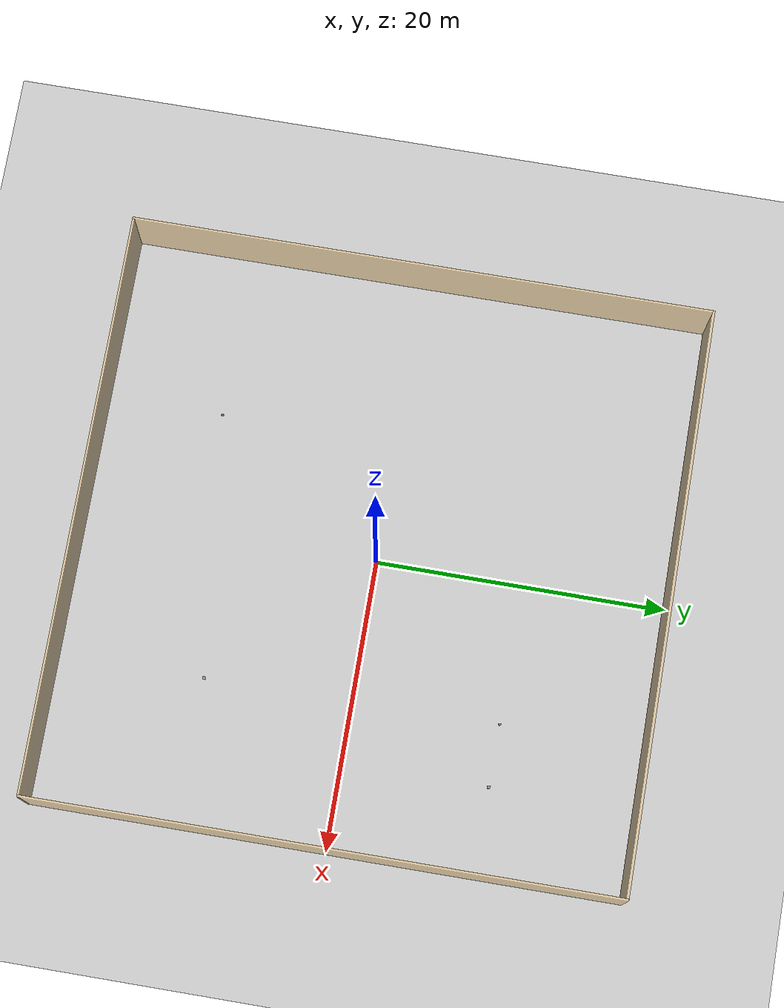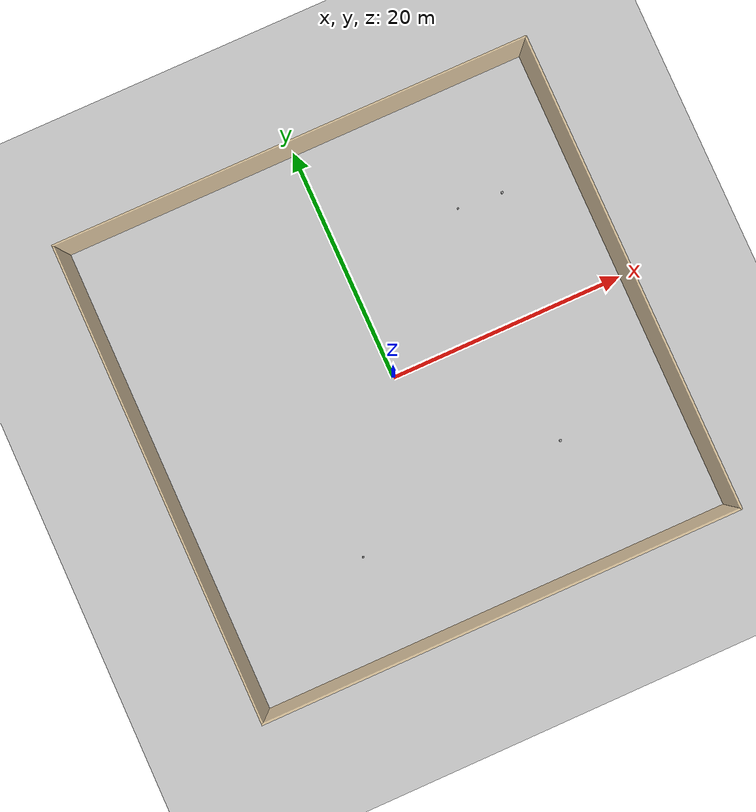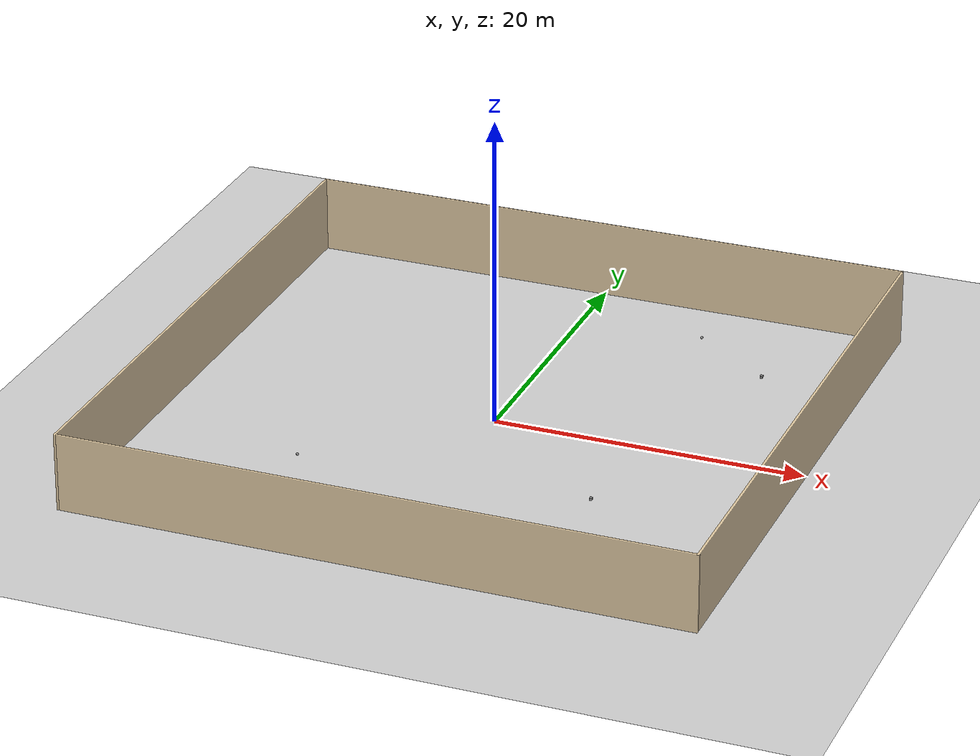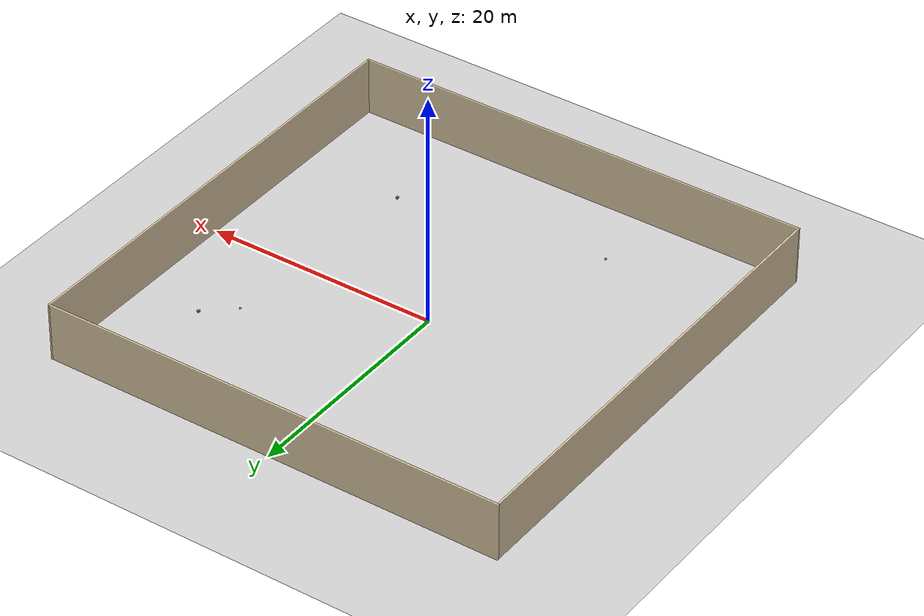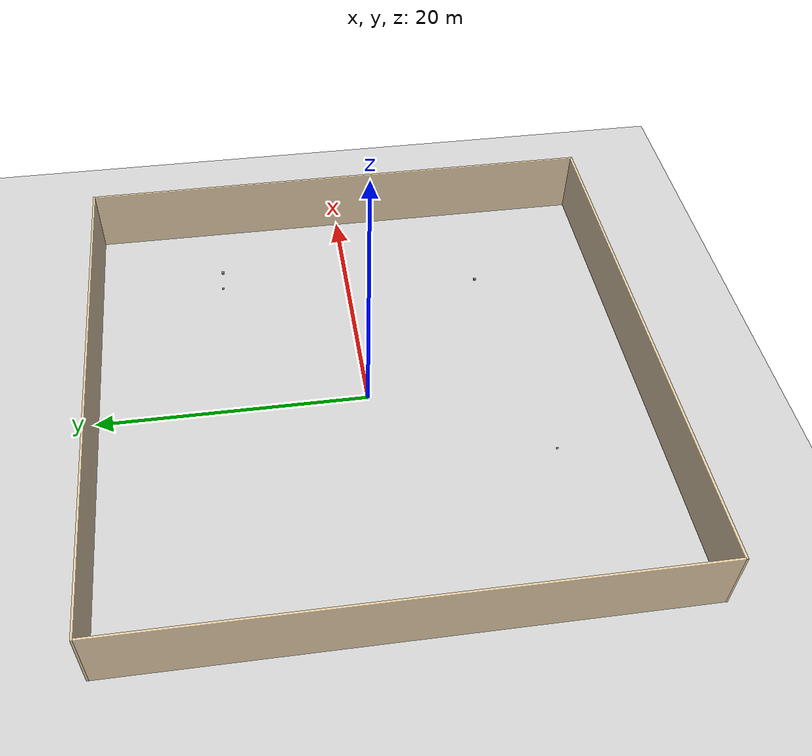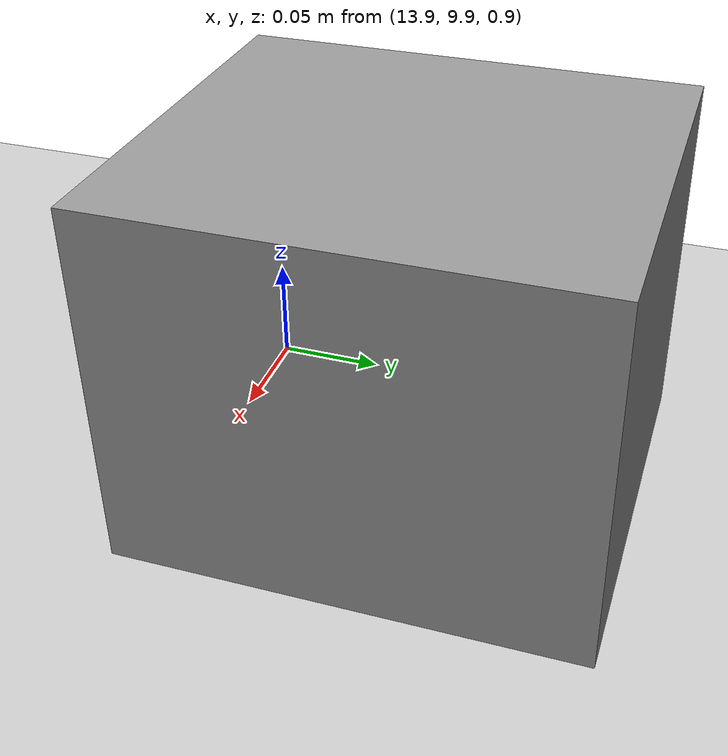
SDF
<sdf version="1.7">
 <world name="default">
  <light name="sun" type="directional">
   <pose>0 0 10 0 -0 0</pose>
   <diffuse>0.8 0.8 0.8 1</diffuse>
   <specular>0.2 0.2 0.2 1</specular>
   <attenuation>
    <range>1000</range>
    <constant>0.9</constant>
    <linear>0.01</linear>
    <quadratic>0.001</quadratic>
   </attenuation>
   <direction>-0.5 0.1 -0.9</direction>
   <spot><inner_angle>0</inner_angle><outer_angle>0</outer_angle><falloff>0</falloff></spot>
  </light>
  <model name="ground_plane">
   <static>1</static>
   <link name="link">
    <collision name="collision">
     <geometry><plane><normal>0 0 1</normal><size>100 100</size></plane></geometry>
     <surface>
      <contact><collide_bitmask>65535</collide_bitmask></contact>
      <friction><ode><mu>100</mu><mu2>50</mu2></ode></friction>
     </surface>
    </collision>
    <visual name="visual">
     <cast_shadows>0</cast_shadows>
     <geometry><plane><normal>0 0 1</normal><size>100 100</size></plane></geometry>
     <material>
      <script><uri>file://media/materials/scripts/gazebo.material</uri><name>Gazebo/Grey</name></script>
     </material>
    </visual>
   </link>
  </model>
  <gravity>0 0 0</gravity>
  <magnetic_field>6e-06 2.3e-05 -4.2e-05</magnetic_field>
  <atmosphere type="adiabatic"/>
  <scene><ambient>0.4 0.4 0.4 1</ambient><background>0.7 0.7 0.7 1</background><shadows>1</shadows></scene>
  <spherical_coordinates>
   <surface_model>EARTH_WGS84</surface_model>
   <latitude_deg>0</latitude_deg>
   <longitude_deg>0</longitude_deg>
   <elevation>0</elevation>
   <heading_deg>0</heading_deg>
  </spherical_coordinates>
  <model name="unit_sphere">
   <pose>10 10 3 0 -0 0</pose>
   <link name="link">
    <inertial>
     <mass>1</mass>
     <inertia><ixx>0.1</ixx><ixy>0</ixy><ixz>0</ixz><iyy>0.1</iyy><iyz>0</iyz><izz>0.1</izz></inertia>
    </inertial>
    <collision name="collision"><geometry><sphere><radius>0.086584</radius></sphere></geometry></collision>
    <visual name="visual">
     <geometry><sphere><radius>0.086584</radius></sphere></geometry>
     <material>
      <script><name>Gazebo/Grey</name><uri>file://media/materials/scripts/gazebo.material</uri></script>
     </material>
    </visual>
   </link>
  </model>
  <model name="unit_box">
   <pose>14 10 1 0 -0 0</pose>
   <link name="link">
    <inertial>
     <mass>1</mass>
     <inertia>
      <ixx>0.166667</ixx>
      <ixy>0</ixy>
      <ixz>0</ixz>
      <iyy>0.166667</iyy>
      <iyz>0</iyz>
      <izz>0.166667</izz>
     </inertia>
    </inertial>
    <collision name="collision">
     <geometry><box><size>0.173762 0.197096 0.157377</size></box></geometry>
    </collision>
    <visual name="visual">
     <geometry><box><size>0.173762 0.197096 0.157377</size></box></geometry>
     <material>
      <script><name>Gazebo/Grey</name><uri>file://media/materials/scripts/gazebo.material</uri></script>
     </material>
    </visual>
   </link>
  </model>
  <model name="unit_sphere_clone">
   <pose>-8 -12 2 0 -0 0</pose>
   <link name="link">
    <inertial>
     <mass>1</mass>
     <inertia><ixx>0.1</ixx><ixy>0</ixy><ixz>0</ixz><iyy>0.1</iyy><iyz>0</iyz><izz>0.1</izz></inertia>
    </inertial>
    <collision name="collision"><geometry><sphere><radius>0.086584</radius></sphere></geometry></collision>
    <visual name="visual">
     <geometry><sphere><radius>0.086584</radius></sphere></geometry>
     <material>
      <script><name>Gazebo/Grey</name><uri>file://media/materials/scripts/gazebo.material</uri></script>
     </material>
    </visual>
   </link>
  </model>
  <model name="unit_box_clone">
   <pose>10 -10 1.5 0 -0 0</pose>
   <link name="link">
    <inertial>
     <mass>1</mass>
     <inertia>
      <ixx>0.166667</ixx>
      <ixy>0</ixy>
      <ixz>0</ixz>
      <iyy>0.166667</iyy>
      <iyz>0</iyz>
      <izz>0.166667</izz>
     </inertia>
    </inertial>
    <collision name="collision">
     <geometry><box><size>0.173762 0.197096 0.157377</size></box></geometry>
    </collision>
    <visual name="visual">
     <geometry><box><size>0.173762 0.197096 0.157377</size></box></geometry>
     <material>
      <script><name>Gazebo/Grey</name><uri>file://media/materials/scripts/gazebo.material</uri></script>
     </material>
    </visual>
   </link>
  </model>
  <model name="walls">
   <link name="Wall_2">
    <pose>-20 -0.075 0 0 -0 1.5708</pose>
    <inertial>
     <mass>1</mass>
     <inertia><ixx>1</ixx><ixy>0</ixy><ixz>0</ixz><iyy>1</iyy><iyz>0</iyz><izz>1</izz></inertia>
    </inertial>
    <visual name="Wall_2_Visual">
     <pose>0 0 2.5 0 -0 0</pose>
     <geometry><box><size>40 0.15 5</size></box></geometry>
     <material>
      <script><uri>file://media/materials/scripts/gazebo.material</uri><name>Gazebo/Grey</name></script>
      <ambient>0.922 0.808 0.616 1</ambient>
      <shader type="pixel"><normal_map>__default__</normal_map></shader>
      <diffuse>0.7 0.7 0.7 1</diffuse>
      <specular>0.01 0.01 0.01 1</specular>
      <emissive>0 0 0 1</emissive>
     </material>
     <meta><layer>0</layer></meta>
     <transparency>0.2</transparency>
    </visual>
    <collision name="Wall_2_Collision">
     <pose>0 0 2.5 0 -0 0</pose>
     <geometry><box><size>40 0.15 5</size></box></geometry>
     <surface>
      <friction>
       <ode><mu>1</mu><mu2>1</mu2><fdir1>0 0 0</fdir1><slip1>0</slip1><slip2>0</slip2></ode>
       <torsional>
        <coefficient>1</coefficient>
        <patch_radius>0</patch_radius>
        <surface_radius>0</surface_radius>
        <use_patch_radius>1</use_patch_radius>
        <ode><slip>0</slip></ode>
       </torsional>
      </friction>
      <bounce><restitution_coefficient>0</restitution_coefficient><threshold>1e+06</threshold></bounce>
      <contact>
       <collide_without_contact>0</collide_without_contact>
       <collide_without_contact_bitmask>1</collide_without_contact_bitmask>
       <collide_bitmask>1</collide_bitmask>
       <ode>
        <soft_cfm>0</soft_cfm>
        <soft_erp>0.2</soft_erp>
        <kp>1e+13</kp>
        <kd>1</kd>
        <max_vel>0.01</max_vel>
        <min_depth>0</min_depth>
       </ode>
       <bullet>
        <split_impulse>1</split_impulse>
        <split_impulse_penetration_threshold>-0.01</split_impulse_penetration_threshold>
        <soft_cfm>0</soft_cfm>
        <soft_erp>0.2</soft_erp>
        <kp>1e+13</kp>
        <kd>1</kd>
       </bullet>
      </contact>
     </surface>
    </collision>
   </link>
   <link name="Wall_5">
    <pose>0 20 0 0 -0 0</pose>
    <inertial>
     <mass>1</mass>
     <inertia><ixx>1</ixx><ixy>0</ixy><ixz>0</ixz><iyy>1</iyy><iyz>0</iyz><izz>1</izz></inertia>
    </inertial>
    <visual name="Wall_5_Visual">
     <pose>0 0 2.5 0 -0 0</pose>
     <geometry><box><size>40.15 0.15 5</size></box></geometry>
     <material>
      <script><uri>file://media/materials/scripts/gazebo.material</uri><name>Gazebo/Grey</name></script>
      <ambient>0.922 0.808 0.616 1</ambient>
      <shader type="pixel"><normal_map>__default__</normal_map></shader>
      <diffuse>0.7 0.7 0.7 1</diffuse>
      <specular>0.01 0.01 0.01 1</specular>
      <emissive>0 0 0 1</emissive>
     </material>
     <meta><layer>0</layer></meta>
     <transparency>0.2</transparency>
    </visual>
    <collision name="Wall_5_Collision">
     <pose>0 0 2.5 0 -0 0</pose>
     <geometry><box><size>40.15 0.15 5</size></box></geometry>
     <surface>
      <friction>
       <ode><mu>1</mu><mu2>1</mu2><fdir1>0 0 0</fdir1><slip1>0</slip1><slip2>0</slip2></ode>
       <torsional>
        <coefficient>1</coefficient>
        <patch_radius>0</patch_radius>
        <surface_radius>0</surface_radius>
        <use_patch_radius>1</use_patch_radius>
        <ode><slip>0</slip></ode>
       </torsional>
      </friction>
      <bounce><restitution_coefficient>0</restitution_coefficient><threshold>1e+06</threshold></bounce>
      <contact>
       <collide_without_contact>0</collide_without_contact>
       <collide_without_contact_bitmask>1</collide_without_contact_bitmask>
       <collide_bitmask>1</collide_bitmask>
       <ode>
        <soft_cfm>0</soft_cfm>
        <soft_erp>0.2</soft_erp>
        <kp>1e+13</kp>
        <kd>1</kd>
        <max_vel>0.01</max_vel>
        <min_depth>0</min_depth>
       </ode>
       <bullet>
        <split_impulse>1</split_impulse>
        <split_impulse_penetration_threshold>-0.01</split_impulse_penetration_threshold>
        <soft_cfm>0</soft_cfm>
        <soft_erp>0.2</soft_erp>
        <kp>1e+13</kp>
        <kd>1</kd>
       </bullet>
      </contact>
     </surface>
    </collision>
   </link>
   <link name="Wall_7">
    <pose>20 0 0 0 0 -1.5708</pose>
    <inertial>
     <mass>1</mass>
     <inertia><ixx>1</ixx><ixy>0</ixy><ixz>0</ixz><iyy>1</iyy><iyz>0</iyz><izz>1</izz></inertia>
    </inertial>
    <visual name="Wall_7_Visual">
     <pose>0 0 2.5 0 -0 0</pose>
     <geometry><box><size>40.15 0.15 5</size></box></geometry>
     <material>
      <script><uri>file://media/materials/scripts/gazebo.material</uri><name>Gazebo/Grey</name></script>
      <ambient>0.922 0.808 0.616 1</ambient>
      <shader type="pixel"><normal_map>__default__</normal_map></shader>
      <diffuse>0.7 0.7 0.7 1</diffuse>
      <specular>0.01 0.01 0.01 1</specular>
      <emissive>0 0 0 1</emissive>
     </material>
     <meta><layer>0</layer></meta>
     <transparency>0.2</transparency>
    </visual>
    <collision name="Wall_7_Collision">
     <pose>0 0 2.5 0 -0 0</pose>
     <geometry><box><size>40.15 0.15 5</size></box></geometry>
     <surface>
      <friction>
       <ode><mu>1</mu><mu2>1</mu2><fdir1>0 0 0</fdir1><slip1>0</slip1><slip2>0</slip2></ode>
       <torsional>
        <coefficient>1</coefficient>
        <patch_radius>0</patch_radius>
        <surface_radius>0</surface_radius>
        <use_patch_radius>1</use_patch_radius>
        <ode><slip>0</slip></ode>
       </torsional>
      </friction>
      <bounce><restitution_coefficient>0</restitution_coefficient><threshold>1e+06</threshold></bounce>
      <contact>
       <collide_without_contact>0</collide_without_contact>
       <collide_without_contact_bitmask>1</collide_without_contact_bitmask>
       <collide_bitmask>1</collide_bitmask>
       <ode>
        <soft_cfm>0</soft_cfm>
        <soft_erp>0.2</soft_erp>
        <kp>1e+13</kp>
        <kd>1</kd>
        <max_vel>0.01</max_vel>
        <min_depth>0</min_depth>
       </ode>
       <bullet>
        <split_impulse>1</split_impulse>
        <split_impulse_penetration_threshold>-0.01</split_impulse_penetration_threshold>
        <soft_cfm>0</soft_cfm>
        <soft_erp>0.2</soft_erp>
        <kp>1e+13</kp>
        <kd>1</kd>
       </bullet>
      </contact>
     </surface>
    </collision>
   </link>
   <link name="Wall_9">
    <pose>0 -20 0 0 -0 3.14159</pose>
    <inertial>
     <mass>1</mass>
     <inertia><ixx>1</ixx><ixy>0</ixy><ixz>0</ixz><iyy>1</iyy><iyz>0</iyz><izz>1</izz></inertia>
    </inertial>
    <visual name="Wall_9_Visual">
     <pose>0 0 2.5 0 -0 0</pose>
     <geometry><box><size>40.15 0.15 5</size></box></geometry>
     <material>
      <script><uri>file://media/materials/scripts/gazebo.material</uri><name>Gazebo/Grey</name></script>
      <ambient>0.922 0.808 0.616 1</ambient>
      <shader type="pixel"><normal_map>__default__</normal_map></shader>
      <diffuse>0.7 0.7 0.7 1</diffuse>
      <specular>0.01 0.01 0.01 1</specular>
      <emissive>0 0 0 1</emissive>
     </material>
     <meta><layer>0</layer></meta>
     <transparency>0.2</transparency>
    </visual>
    <collision name="Wall_9_Collision">
     <pose>0 0 2.5 0 -0 0</pose>
     <geometry><box><size>40.15 0.15 5</size></box></geometry>
     <surface>
      <friction>
       <ode><mu>1</mu><mu2>1</mu2><fdir1>0 0 0</fdir1><slip1>0</slip1><slip2>0</slip2></ode>
       <torsional>
        <coefficient>1</coefficient>
        <patch_radius>0</patch_radius>
        <surface_radius>0</surface_radius>
        <use_patch_radius>1</use_patch_radius>
        <ode><slip>0</slip></ode>
       </torsional>
      </friction>
      <bounce><restitution_coefficient>0</restitution_coefficient><threshold>1e+06</threshold></bounce>
      <contact>
       <collide_without_contact>0</collide_without_contact>
       <collide_without_contact_bitmask>1</collide_without_contact_bitmask>
       <collide_bitmask>1</collide_bitmask>
       <ode>
        <soft_cfm>0</soft_cfm>
        <soft_erp>0.2</soft_erp>
        <kp>1e+13</kp>
        <kd>1</kd>
        <max_vel>0.01</max_vel>
        <min_depth>0</min_depth>
       </ode>
       <bullet>
        <split_impulse>1</split_impulse>
        <split_impulse_penetration_threshold>-0.01</split_impulse_penetration_threshold>
        <soft_cfm>0</soft_cfm>
        <soft_erp>0.2</soft_erp>
        <kp>1e+13</kp>
        <kd>1</kd>
       </bullet>
      </contact>
     </surface>
    </collision>
   </link>
   <static>1</static>
   <pose>0.082 -0.163974 0 0 -0 0</pose>
  </model>
  <physics type="ode">
   <max_step_size>0.001</max_step_size>
   <real_time_factor>1</real_time_factor>
   <real_time_update_rate>1000</real_time_update_rate>
  </physics>
 </world>
</sdf>
